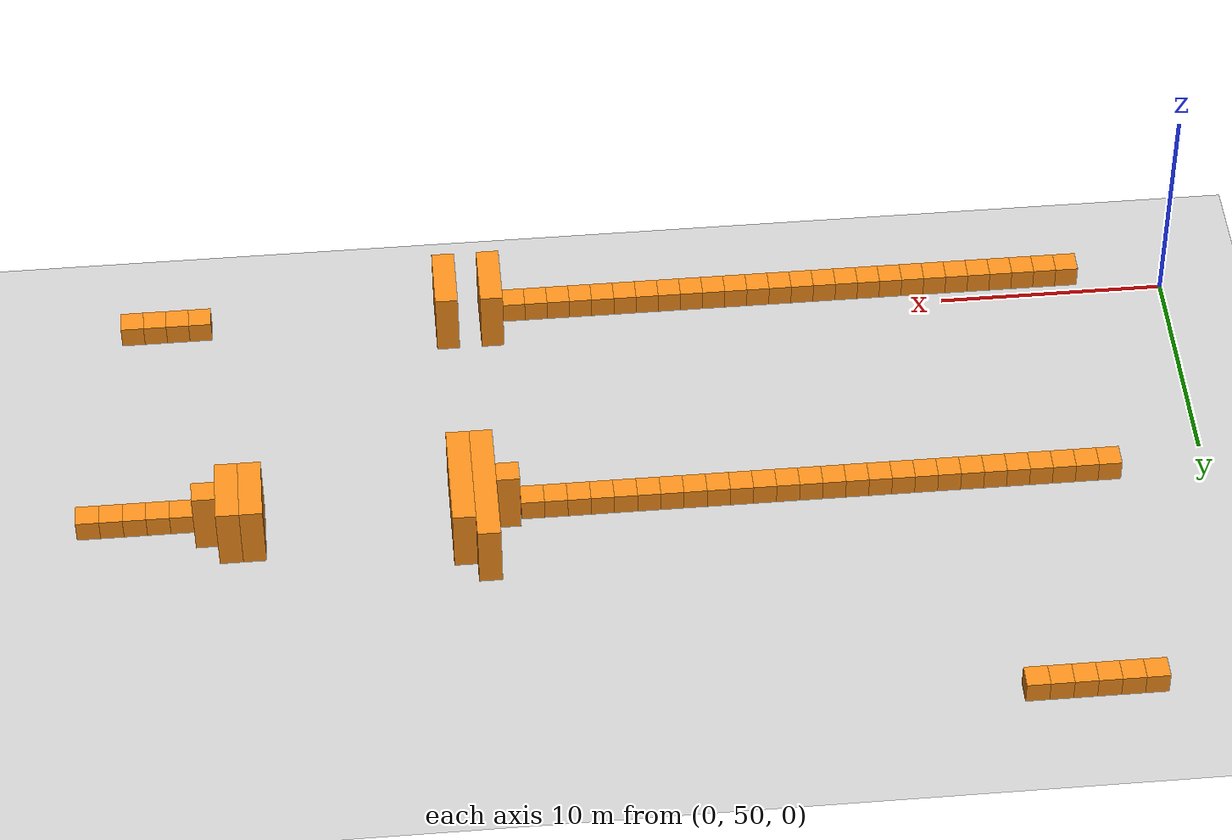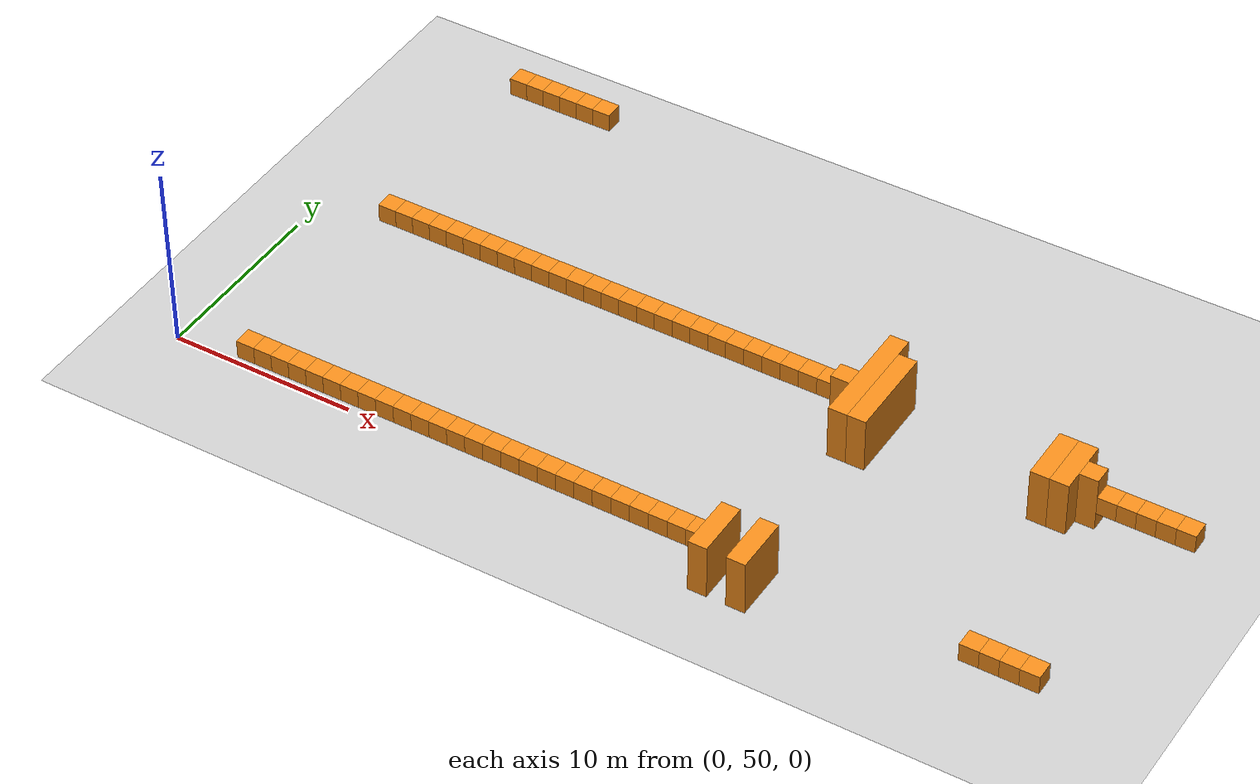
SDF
<sdf version="1.6">
 <world name="default">
  <include><uri>model://ground_plane</uri></include>
  <model name="unit_box_006">
   <pose>4.50    50.00     1.50 0 0 0</pose>
   <static>1</static>
   <link name="link">
    <inertial>
     <mass>5000</mass>
     <inertia><ixx>200</ixx><ixy>0</ixy><ixz>0</ixz><iyy>200</iyy><iyz>0</iyz><izz>200</izz></inertia>
    </inertial>
    <collision name="collision"><geometry><box><size>1 1 1</size></box></geometry></collision>
    <visual name="visual">
     <geometry><box><size>1 1 1</size></box></geometry>
     <material>
      <script><name>Gazebo/Orange</name><uri>file://media/materials/scripts/gazebo.material</uri></script>
     </material>
    </visual>
   </link>
  </model>
  <model name="unit_box_007">
   <pose>4.50    62.00     1.50 0 0 0</pose>
   <static>1</static>
   <link name="link">
    <inertial>
     <mass>5000</mass>
     <inertia><ixx>200</ixx><ixy>0</ixy><ixz>0</ixz><iyy>200</iyy><iyz>0</iyz><izz>200</izz></inertia>
    </inertial>
    <collision name="collision"><geometry><box><size>1 1 1</size></box></geometry></collision>
    <visual name="visual">
     <geometry><box><size>1 1 1</size></box></geometry>
     <material>
      <script><name>Gazebo/Orange</name><uri>file://media/materials/scripts/gazebo.material</uri></script>
     </material>
    </visual>
   </link>
  </model>
  <model name="unit_box_008">
   <pose>4.50    74.00     1.50 0 0 0</pose>
   <static>1</static>
   <link name="link">
    <inertial>
     <mass>5000</mass>
     <inertia><ixx>200</ixx><ixy>0</ixy><ixz>0</ixz><iyy>200</iyy><iyz>0</iyz><izz>200</izz></inertia>
    </inertial>
    <collision name="collision"><geometry><box><size>1 1 1</size></box></geometry></collision>
    <visual name="visual">
     <geometry><box><size>1 1 1</size></box></geometry>
     <material>
      <script><name>Gazebo/Orange</name><uri>file://media/materials/scripts/gazebo.material</uri></script>
     </material>
    </visual>
   </link>
  </model>
  <model name="unit_box_019">
   <pose>5.50    50.00     1.50 0 0 0</pose>
   <static>1</static>
   <link name="link">
    <inertial>
     <mass>5000</mass>
     <inertia><ixx>200</ixx><ixy>0</ixy><ixz>0</ixz><iyy>200</iyy><iyz>0</iyz><izz>200</izz></inertia>
    </inertial>
    <collision name="collision"><geometry><box><size>1 1 1</size></box></geometry></collision>
    <visual name="visual">
     <geometry><box><size>1 1 1</size></box></geometry>
     <material>
      <script><name>Gazebo/Orange</name><uri>file://media/materials/scripts/gazebo.material</uri></script>
     </material>
    </visual>
   </link>
  </model>
  <model name="unit_box_020">
   <pose>5.50    62.00     1.50 0 0 0</pose>
   <static>1</static>
   <link name="link">
    <inertial>
     <mass>5000</mass>
     <inertia><ixx>200</ixx><ixy>0</ixy><ixz>0</ixz><iyy>200</iyy><iyz>0</iyz><izz>200</izz></inertia>
    </inertial>
    <collision name="collision"><geometry><box><size>1 1 1</size></box></geometry></collision>
    <visual name="visual">
     <geometry><box><size>1 1 1</size></box></geometry>
     <material>
      <script><name>Gazebo/Orange</name><uri>file://media/materials/scripts/gazebo.material</uri></script>
     </material>
    </visual>
   </link>
  </model>
  <model name="unit_box_021">
   <pose>5.50    74.00     1.50 0 0 0</pose>
   <static>1</static>
   <link name="link">
    <inertial>
     <mass>5000</mass>
     <inertia><ixx>200</ixx><ixy>0</ixy><ixz>0</ixz><iyy>200</iyy><iyz>0</iyz><izz>200</izz></inertia>
    </inertial>
    <collision name="collision"><geometry><box><size>1 1 1</size></box></geometry></collision>
    <visual name="visual">
     <geometry><box><size>1 1 1</size></box></geometry>
     <material>
      <script><name>Gazebo/Orange</name><uri>file://media/materials/scripts/gazebo.material</uri></script>
     </material>
    </visual>
   </link>
  </model>
  <model name="unit_box_032">
   <pose>6.50    50.00     1.50 0 0 0</pose>
   <static>1</static>
   <link name="link">
    <inertial>
     <mass>5000</mass>
     <inertia><ixx>200</ixx><ixy>0</ixy><ixz>0</ixz><iyy>200</iyy><iyz>0</iyz><izz>200</izz></inertia>
    </inertial>
    <collision name="collision"><geometry><box><size>1 1 1</size></box></geometry></collision>
    <visual name="visual">
     <geometry><box><size>1 1 1</size></box></geometry>
     <material>
      <script><name>Gazebo/Orange</name><uri>file://media/materials/scripts/gazebo.material</uri></script>
     </material>
    </visual>
   </link>
  </model>
  <model name="unit_box_033">
   <pose>6.50    62.00     1.50 0 0 0</pose>
   <static>1</static>
   <link name="link">
    <inertial>
     <mass>5000</mass>
     <inertia><ixx>200</ixx><ixy>0</ixy><ixz>0</ixz><iyy>200</iyy><iyz>0</iyz><izz>200</izz></inertia>
    </inertial>
    <collision name="collision"><geometry><box><size>1 1 1</size></box></geometry></collision>
    <visual name="visual">
     <geometry><box><size>1 1 1</size></box></geometry>
     <material>
      <script><name>Gazebo/Orange</name><uri>file://media/materials/scripts/gazebo.material</uri></script>
     </material>
    </visual>
   </link>
  </model>
  <model name="unit_box_034">
   <pose>6.50    74.00     1.50 0 0 0</pose>
   <static>1</static>
   <link name="link">
    <inertial>
     <mass>5000</mass>
     <inertia><ixx>200</ixx><ixy>0</ixy><ixz>0</ixz><iyy>200</iyy><iyz>0</iyz><izz>200</izz></inertia>
    </inertial>
    <collision name="collision"><geometry><box><size>1 1 1</size></box></geometry></collision>
    <visual name="visual">
     <geometry><box><size>1 1 1</size></box></geometry>
     <material>
      <script><name>Gazebo/Orange</name><uri>file://media/materials/scripts/gazebo.material</uri></script>
     </material>
    </visual>
   </link>
  </model>
  <model name="unit_box_045">
   <pose>7.50    50.00     1.50 0 0 0</pose>
   <static>1</static>
   <link name="link">
    <inertial>
     <mass>5000</mass>
     <inertia><ixx>200</ixx><ixy>0</ixy><ixz>0</ixz><iyy>200</iyy><iyz>0</iyz><izz>200</izz></inertia>
    </inertial>
    <collision name="collision"><geometry><box><size>1 1 1</size></box></geometry></collision>
    <visual name="visual">
     <geometry><box><size>1 1 1</size></box></geometry>
     <material>
      <script><name>Gazebo/Orange</name><uri>file://media/materials/scripts/gazebo.material</uri></script>
     </material>
    </visual>
   </link>
  </model>
  <model name="unit_box_046">
   <pose>7.50    62.00     1.50 0 0 0</pose>
   <static>1</static>
   <link name="link">
    <inertial>
     <mass>5000</mass>
     <inertia><ixx>200</ixx><ixy>0</ixy><ixz>0</ixz><iyy>200</iyy><iyz>0</iyz><izz>200</izz></inertia>
    </inertial>
    <collision name="collision"><geometry><box><size>1 1 1</size></box></geometry></collision>
    <visual name="visual">
     <geometry><box><size>1 1 1</size></box></geometry>
     <material>
      <script><name>Gazebo/Orange</name><uri>file://media/materials/scripts/gazebo.material</uri></script>
     </material>
    </visual>
   </link>
  </model>
  <model name="unit_box_047">
   <pose>7.50    74.00     1.50 0 0 0</pose>
   <static>1</static>
   <link name="link">
    <inertial>
     <mass>5000</mass>
     <inertia><ixx>200</ixx><ixy>0</ixy><ixz>0</ixz><iyy>200</iyy><iyz>0</iyz><izz>200</izz></inertia>
    </inertial>
    <collision name="collision"><geometry><box><size>1 1 1</size></box></geometry></collision>
    <visual name="visual">
     <geometry><box><size>1 1 1</size></box></geometry>
     <material>
      <script><name>Gazebo/Orange</name><uri>file://media/materials/scripts/gazebo.material</uri></script>
     </material>
    </visual>
   </link>
  </model>
  <model name="unit_box_058">
   <pose>8.50    50.00     1.50 0 0 0</pose>
   <static>1</static>
   <link name="link">
    <inertial>
     <mass>5000</mass>
     <inertia><ixx>200</ixx><ixy>0</ixy><ixz>0</ixz><iyy>200</iyy><iyz>0</iyz><izz>200</izz></inertia>
    </inertial>
    <collision name="collision"><geometry><box><size>1 1 1</size></box></geometry></collision>
    <visual name="visual">
     <geometry><box><size>1 1 1</size></box></geometry>
     <material>
      <script><name>Gazebo/Orange</name><uri>file://media/materials/scripts/gazebo.material</uri></script>
     </material>
    </visual>
   </link>
  </model>
  <model name="unit_box_059">
   <pose>8.50    62.00     1.50 0 0 0</pose>
   <static>1</static>
   <link name="link">
    <inertial>
     <mass>5000</mass>
     <inertia><ixx>200</ixx><ixy>0</ixy><ixz>0</ixz><iyy>200</iyy><iyz>0</iyz><izz>200</izz></inertia>
    </inertial>
    <collision name="collision"><geometry><box><size>1 1 1</size></box></geometry></collision>
    <visual name="visual">
     <geometry><box><size>1 1 1</size></box></geometry>
     <material>
      <script><name>Gazebo/Orange</name><uri>file://media/materials/scripts/gazebo.material</uri></script>
     </material>
    </visual>
   </link>
  </model>
  <model name="unit_box_060">
   <pose>8.50    74.00     1.50 0 0 0</pose>
   <static>1</static>
   <link name="link">
    <inertial>
     <mass>5000</mass>
     <inertia><ixx>200</ixx><ixy>0</ixy><ixz>0</ixz><iyy>200</iyy><iyz>0</iyz><izz>200</izz></inertia>
    </inertial>
    <collision name="collision"><geometry><box><size>1 1 1</size></box></geometry></collision>
    <visual name="visual">
     <geometry><box><size>1 1 1</size></box></geometry>
     <material>
      <script><name>Gazebo/Orange</name><uri>file://media/materials/scripts/gazebo.material</uri></script>
     </material>
    </visual>
   </link>
  </model>
  <model name="unit_box_071">
   <pose>9.50    50.00     1.50 0 0 0</pose>
   <static>1</static>
   <link name="link">
    <inertial>
     <mass>5000</mass>
     <inertia><ixx>200</ixx><ixy>0</ixy><ixz>0</ixz><iyy>200</iyy><iyz>0</iyz><izz>200</izz></inertia>
    </inertial>
    <collision name="collision"><geometry><box><size>1 1 1</size></box></geometry></collision>
    <visual name="visual">
     <geometry><box><size>1 1 1</size></box></geometry>
     <material>
      <script><name>Gazebo/Orange</name><uri>file://media/materials/scripts/gazebo.material</uri></script>
     </material>
    </visual>
   </link>
  </model>
  <model name="unit_box_072">
   <pose>9.50    62.00     1.50 0 0 0</pose>
   <static>1</static>
   <link name="link">
    <inertial>
     <mass>5000</mass>
     <inertia><ixx>200</ixx><ixy>0</ixy><ixz>0</ixz><iyy>200</iyy><iyz>0</iyz><izz>200</izz></inertia>
    </inertial>
    <collision name="collision"><geometry><box><size>1 1 1</size></box></geometry></collision>
    <visual name="visual">
     <geometry><box><size>1 1 1</size></box></geometry>
     <material>
      <script><name>Gazebo/Orange</name><uri>file://media/materials/scripts/gazebo.material</uri></script>
     </material>
    </visual>
   </link>
  </model>
  <model name="unit_box_073">
   <pose>9.50    74.00     1.50 0 0 0</pose>
   <static>1</static>
   <link name="link">
    <inertial>
     <mass>5000</mass>
     <inertia><ixx>200</ixx><ixy>0</ixy><ixz>0</ixz><iyy>200</iyy><iyz>0</iyz><izz>200</izz></inertia>
    </inertial>
    <collision name="collision"><geometry><box><size>1 1 1</size></box></geometry></collision>
    <visual name="visual">
     <geometry><box><size>1 1 1</size></box></geometry>
     <material>
      <script><name>Gazebo/Orange</name><uri>file://media/materials/scripts/gazebo.material</uri></script>
     </material>
    </visual>
   </link>
  </model>
  <model name="unit_box_084">
   <pose>10.50    50.00     1.50 0 0 0</pose>
   <static>1</static>
   <link name="link">
    <inertial>
     <mass>5000</mass>
     <inertia><ixx>200</ixx><ixy>0</ixy><ixz>0</ixz><iyy>200</iyy><iyz>0</iyz><izz>200</izz></inertia>
    </inertial>
    <collision name="collision"><geometry><box><size>1 1 1</size></box></geometry></collision>
    <visual name="visual">
     <geometry><box><size>1 1 1</size></box></geometry>
     <material>
      <script><name>Gazebo/Orange</name><uri>file://media/materials/scripts/gazebo.material</uri></script>
     </material>
    </visual>
   </link>
  </model>
  <model name="unit_box_085">
   <pose>10.50    62.00     1.50 0 0 0</pose>
   <static>1</static>
   <link name="link">
    <inertial>
     <mass>5000</mass>
     <inertia><ixx>200</ixx><ixy>0</ixy><ixz>0</ixz><iyy>200</iyy><iyz>0</iyz><izz>200</izz></inertia>
    </inertial>
    <collision name="collision"><geometry><box><size>1 1 1</size></box></geometry></collision>
    <visual name="visual">
     <geometry><box><size>1 1 1</size></box></geometry>
     <material>
      <script><name>Gazebo/Orange</name><uri>file://media/materials/scripts/gazebo.material</uri></script>
     </material>
    </visual>
   </link>
  </model>
  <model name="unit_box_097">
   <pose>11.50    50.00     1.50 0 0 0</pose>
   <static>1</static>
   <link name="link">
    <inertial>
     <mass>5000</mass>
     <inertia><ixx>200</ixx><ixy>0</ixy><ixz>0</ixz><iyy>200</iyy><iyz>0</iyz><izz>200</izz></inertia>
    </inertial>
    <collision name="collision"><geometry><box><size>1 1 1</size></box></geometry></collision>
    <visual name="visual">
     <geometry><box><size>1 1 1</size></box></geometry>
     <material>
      <script><name>Gazebo/Orange</name><uri>file://media/materials/scripts/gazebo.material</uri></script>
     </material>
    </visual>
   </link>
  </model>
  <model name="unit_box_098">
   <pose>11.50    62.00     1.50 0 0 0</pose>
   <static>1</static>
   <link name="link">
    <inertial>
     <mass>5000</mass>
     <inertia><ixx>200</ixx><ixy>0</ixy><ixz>0</ixz><iyy>200</iyy><iyz>0</iyz><izz>200</izz></inertia>
    </inertial>
    <collision name="collision"><geometry><box><size>1 1 1</size></box></geometry></collision>
    <visual name="visual">
     <geometry><box><size>1 1 1</size></box></geometry>
     <material>
      <script><name>Gazebo/Orange</name><uri>file://media/materials/scripts/gazebo.material</uri></script>
     </material>
    </visual>
   </link>
  </model>
  <model name="unit_box_110">
   <pose>12.50    50.00     1.50 0 0 0</pose>
   <static>1</static>
   <link name="link">
    <inertial>
     <mass>5000</mass>
     <inertia><ixx>200</ixx><ixy>0</ixy><ixz>0</ixz><iyy>200</iyy><iyz>0</iyz><izz>200</izz></inertia>
    </inertial>
    <collision name="collision"><geometry><box><size>1 1 1</size></box></geometry></collision>
    <visual name="visual">
     <geometry><box><size>1 1 1</size></box></geometry>
     <material>
      <script><name>Gazebo/Orange</name><uri>file://media/materials/scripts/gazebo.material</uri></script>
     </material>
    </visual>
   </link>
  </model>
  <model name="unit_box_111">
   <pose>12.50    62.00     1.50 0 0 0</pose>
   <static>1</static>
   <link name="link">
    <inertial>
     <mass>5000</mass>
     <inertia><ixx>200</ixx><ixy>0</ixy><ixz>0</ixz><iyy>200</iyy><iyz>0</iyz><izz>200</izz></inertia>
    </inertial>
    <collision name="collision"><geometry><box><size>1 1 1</size></box></geometry></collision>
    <visual name="visual">
     <geometry><box><size>1 1 1</size></box></geometry>
     <material>
      <script><name>Gazebo/Orange</name><uri>file://media/materials/scripts/gazebo.material</uri></script>
     </material>
    </visual>
   </link>
  </model>
  <model name="unit_box_123">
   <pose>13.50    50.00     1.50 0 0 0</pose>
   <static>1</static>
   <link name="link">
    <inertial>
     <mass>5000</mass>
     <inertia><ixx>200</ixx><ixy>0</ixy><ixz>0</ixz><iyy>200</iyy><iyz>0</iyz><izz>200</izz></inertia>
    </inertial>
    <collision name="collision"><geometry><box><size>1 1 1</size></box></geometry></collision>
    <visual name="visual">
     <geometry><box><size>1 1 1</size></box></geometry>
     <material>
      <script><name>Gazebo/Orange</name><uri>file://media/materials/scripts/gazebo.material</uri></script>
     </material>
    </visual>
   </link>
  </model>
  <model name="unit_box_124">
   <pose>13.50    62.00     1.50 0 0 0</pose>
   <static>1</static>
   <link name="link">
    <inertial>
     <mass>5000</mass>
     <inertia><ixx>200</ixx><ixy>0</ixy><ixz>0</ixz><iyy>200</iyy><iyz>0</iyz><izz>200</izz></inertia>
    </inertial>
    <collision name="collision"><geometry><box><size>1 1 1</size></box></geometry></collision>
    <visual name="visual">
     <geometry><box><size>1 1 1</size></box></geometry>
     <material>
      <script><name>Gazebo/Orange</name><uri>file://media/materials/scripts/gazebo.material</uri></script>
     </material>
    </visual>
   </link>
  </model>
  <model name="unit_box_136">
   <pose>14.50    50.00     1.50 0 0 0</pose>
   <static>1</static>
   <link name="link">
    <inertial>
     <mass>5000</mass>
     <inertia><ixx>200</ixx><ixy>0</ixy><ixz>0</ixz><iyy>200</iyy><iyz>0</iyz><izz>200</izz></inertia>
    </inertial>
    <collision name="collision"><geometry><box><size>1 1 1</size></box></geometry></collision>
    <visual name="visual">
     <geometry><box><size>1 1 1</size></box></geometry>
     <material>
      <script><name>Gazebo/Orange</name><uri>file://media/materials/scripts/gazebo.material</uri></script>
     </material>
    </visual>
   </link>
  </model>
  <model name="unit_box_137">
   <pose>14.50    62.00     1.50 0 0 0</pose>
   <static>1</static>
   <link name="link">
    <inertial>
     <mass>5000</mass>
     <inertia><ixx>200</ixx><ixy>0</ixy><ixz>0</ixz><iyy>200</iyy><iyz>0</iyz><izz>200</izz></inertia>
    </inertial>
    <collision name="collision"><geometry><box><size>1 1 1</size></box></geometry></collision>
    <visual name="visual">
     <geometry><box><size>1 1 1</size></box></geometry>
     <material>
      <script><name>Gazebo/Orange</name><uri>file://media/materials/scripts/gazebo.material</uri></script>
     </material>
    </visual>
   </link>
  </model>
  <model name="unit_box_149">
   <pose>15.50    50.00     1.50 0 0 0</pose>
   <static>1</static>
   <link name="link">
    <inertial>
     <mass>5000</mass>
     <inertia><ixx>200</ixx><ixy>0</ixy><ixz>0</ixz><iyy>200</iyy><iyz>0</iyz><izz>200</izz></inertia>
    </inertial>
    <collision name="collision"><geometry><box><size>1 1 1</size></box></geometry></collision>
    <visual name="visual">
     <geometry><box><size>1 1 1</size></box></geometry>
     <material>
      <script><name>Gazebo/Orange</name><uri>file://media/materials/scripts/gazebo.material</uri></script>
     </material>
    </visual>
   </link>
  </model>
  <model name="unit_box_150">
   <pose>15.50    62.00     1.50 0 0 0</pose>
   <static>1</static>
   <link name="link">
    <inertial>
     <mass>5000</mass>
     <inertia><ixx>200</ixx><ixy>0</ixy><ixz>0</ixz><iyy>200</iyy><iyz>0</iyz><izz>200</izz></inertia>
    </inertial>
    <collision name="collision"><geometry><box><size>1 1 1</size></box></geometry></collision>
    <visual name="visual">
     <geometry><box><size>1 1 1</size></box></geometry>
     <material>
      <script><name>Gazebo/Orange</name><uri>file://media/materials/scripts/gazebo.material</uri></script>
     </material>
    </visual>
   </link>
  </model>
  <model name="unit_box_162">
   <pose>16.50    50.00     1.50 0 0 0</pose>
   <static>1</static>
   <link name="link">
    <inertial>
     <mass>5000</mass>
     <inertia><ixx>200</ixx><ixy>0</ixy><ixz>0</ixz><iyy>200</iyy><iyz>0</iyz><izz>200</izz></inertia>
    </inertial>
    <collision name="collision"><geometry><box><size>1 1 1</size></box></geometry></collision>
    <visual name="visual">
     <geometry><box><size>1 1 1</size></box></geometry>
     <material>
      <script><name>Gazebo/Orange</name><uri>file://media/materials/scripts/gazebo.material</uri></script>
     </material>
    </visual>
   </link>
  </model>
  <model name="unit_box_163">
   <pose>16.50    62.00     1.50 0 0 0</pose>
   <static>1</static>
   <link name="link">
    <inertial>
     <mass>5000</mass>
     <inertia><ixx>200</ixx><ixy>0</ixy><ixz>0</ixz><iyy>200</iyy><iyz>0</iyz><izz>200</izz></inertia>
    </inertial>
    <collision name="collision"><geometry><box><size>1 1 1</size></box></geometry></collision>
    <visual name="visual">
     <geometry><box><size>1 1 1</size></box></geometry>
     <material>
      <script><name>Gazebo/Orange</name><uri>file://media/materials/scripts/gazebo.material</uri></script>
     </material>
    </visual>
   </link>
  </model>
  <model name="unit_box_175">
   <pose>17.50    50.00     1.50 0 0 0</pose>
   <static>1</static>
   <link name="link">
    <inertial>
     <mass>5000</mass>
     <inertia><ixx>200</ixx><ixy>0</ixy><ixz>0</ixz><iyy>200</iyy><iyz>0</iyz><izz>200</izz></inertia>
    </inertial>
    <collision name="collision"><geometry><box><size>1 1 1</size></box></geometry></collision>
    <visual name="visual">
     <geometry><box><size>1 1 1</size></box></geometry>
     <material>
      <script><name>Gazebo/Orange</name><uri>file://media/materials/scripts/gazebo.material</uri></script>
     </material>
    </visual>
   </link>
  </model>
  <model name="unit_box_176">
   <pose>17.50    62.00     1.50 0 0 0</pose>
   <static>1</static>
   <link name="link">
    <inertial>
     <mass>5000</mass>
     <inertia><ixx>200</ixx><ixy>0</ixy><ixz>0</ixz><iyy>200</iyy><iyz>0</iyz><izz>200</izz></inertia>
    </inertial>
    <collision name="collision"><geometry><box><size>1 1 1</size></box></geometry></collision>
    <visual name="visual">
     <geometry><box><size>1 1 1</size></box></geometry>
     <material>
      <script><name>Gazebo/Orange</name><uri>file://media/materials/scripts/gazebo.material</uri></script>
     </material>
    </visual>
   </link>
  </model>
  <model name="unit_box_188">
   <pose>18.50    50.00     1.50 0 0 0</pose>
   <static>1</static>
   <link name="link">
    <inertial>
     <mass>5000</mass>
     <inertia><ixx>200</ixx><ixy>0</ixy><ixz>0</ixz><iyy>200</iyy><iyz>0</iyz><izz>200</izz></inertia>
    </inertial>
    <collision name="collision"><geometry><box><size>1 1 1</size></box></geometry></collision>
    <visual name="visual">
     <geometry><box><size>1 1 1</size></box></geometry>
     <material>
      <script><name>Gazebo/Orange</name><uri>file://media/materials/scripts/gazebo.material</uri></script>
     </material>
    </visual>
   </link>
  </model>
  <model name="unit_box_189">
   <pose>18.50    62.00     1.50 0 0 0</pose>
   <static>1</static>
   <link name="link">
    <inertial>
     <mass>5000</mass>
     <inertia><ixx>200</ixx><ixy>0</ixy><ixz>0</ixz><iyy>200</iyy><iyz>0</iyz><izz>200</izz></inertia>
    </inertial>
    <collision name="collision"><geometry><box><size>1 1 1</size></box></geometry></collision>
    <visual name="visual">
     <geometry><box><size>1 1 1</size></box></geometry>
     <material>
      <script><name>Gazebo/Orange</name><uri>file://media/materials/scripts/gazebo.material</uri></script>
     </material>
    </visual>
   </link>
  </model>
  <model name="unit_box_201">
   <pose>19.50    50.00     1.50 0 0 0</pose>
   <static>1</static>
   <link name="link">
    <inertial>
     <mass>5000</mass>
     <inertia><ixx>200</ixx><ixy>0</ixy><ixz>0</ixz><iyy>200</iyy><iyz>0</iyz><izz>200</izz></inertia>
    </inertial>
    <collision name="collision"><geometry><box><size>1 1 1</size></box></geometry></collision>
    <visual name="visual">
     <geometry><box><size>1 1 1</size></box></geometry>
     <material>
      <script><name>Gazebo/Orange</name><uri>file://media/materials/scripts/gazebo.material</uri></script>
     </material>
    </visual>
   </link>
  </model>
  <model name="unit_box_202">
   <pose>19.50    62.00     1.50 0 0 0</pose>
   <static>1</static>
   <link name="link">
    <inertial>
     <mass>5000</mass>
     <inertia><ixx>200</ixx><ixy>0</ixy><ixz>0</ixz><iyy>200</iyy><iyz>0</iyz><izz>200</izz></inertia>
    </inertial>
    <collision name="collision"><geometry><box><size>1 1 1</size></box></geometry></collision>
    <visual name="visual">
     <geometry><box><size>1 1 1</size></box></geometry>
     <material>
      <script><name>Gazebo/Orange</name><uri>file://media/materials/scripts/gazebo.material</uri></script>
     </material>
    </visual>
   </link>
  </model>
  <model name="unit_box_214">
   <pose>20.50    50.00     1.50 0 0 0</pose>
   <static>1</static>
   <link name="link">
    <inertial>
     <mass>5000</mass>
     <inertia><ixx>200</ixx><ixy>0</ixy><ixz>0</ixz><iyy>200</iyy><iyz>0</iyz><izz>200</izz></inertia>
    </inertial>
    <collision name="collision"><geometry><box><size>1 1 1</size></box></geometry></collision>
    <visual name="visual">
     <geometry><box><size>1 1 1</size></box></geometry>
     <material>
      <script><name>Gazebo/Orange</name><uri>file://media/materials/scripts/gazebo.material</uri></script>
     </material>
    </visual>
   </link>
  </model>
  <model name="unit_box_215">
   <pose>20.50    62.00     1.50 0 0 0</pose>
   <static>1</static>
   <link name="link">
    <inertial>
     <mass>5000</mass>
     <inertia><ixx>200</ixx><ixy>0</ixy><ixz>0</ixz><iyy>200</iyy><iyz>0</iyz><izz>200</izz></inertia>
    </inertial>
    <collision name="collision"><geometry><box><size>1 1 1</size></box></geometry></collision>
    <visual name="visual">
     <geometry><box><size>1 1 1</size></box></geometry>
     <material>
      <script><name>Gazebo/Orange</name><uri>file://media/materials/scripts/gazebo.material</uri></script>
     </material>
    </visual>
   </link>
  </model>
  <model name="unit_box_227">
   <pose>21.50    50.00     1.50 0 0 0</pose>
   <static>1</static>
   <link name="link">
    <inertial>
     <mass>5000</mass>
     <inertia><ixx>200</ixx><ixy>0</ixy><ixz>0</ixz><iyy>200</iyy><iyz>0</iyz><izz>200</izz></inertia>
    </inertial>
    <collision name="collision"><geometry><box><size>1 1 1</size></box></geometry></collision>
    <visual name="visual">
     <geometry><box><size>1 1 1</size></box></geometry>
     <material>
      <script><name>Gazebo/Orange</name><uri>file://media/materials/scripts/gazebo.material</uri></script>
     </material>
    </visual>
   </link>
  </model>
  <model name="unit_box_228">
   <pose>21.50    62.00     1.50 0 0 0</pose>
   <static>1</static>
   <link name="link">
    <inertial>
     <mass>5000</mass>
     <inertia><ixx>200</ixx><ixy>0</ixy><ixz>0</ixz><iyy>200</iyy><iyz>0</iyz><izz>200</izz></inertia>
    </inertial>
    <collision name="collision"><geometry><box><size>1 1 1</size></box></geometry></collision>
    <visual name="visual">
     <geometry><box><size>1 1 1</size></box></geometry>
     <material>
      <script><name>Gazebo/Orange</name><uri>file://media/materials/scripts/gazebo.material</uri></script>
     </material>
    </visual>
   </link>
  </model>
  <model name="unit_box_240">
   <pose>22.50    50.00     1.50 0 0 0</pose>
   <static>1</static>
   <link name="link">
    <inertial>
     <mass>5000</mass>
     <inertia><ixx>200</ixx><ixy>0</ixy><ixz>0</ixz><iyy>200</iyy><iyz>0</iyz><izz>200</izz></inertia>
    </inertial>
    <collision name="collision"><geometry><box><size>1 1 1</size></box></geometry></collision>
    <visual name="visual">
     <geometry><box><size>1 1 1</size></box></geometry>
     <material>
      <script><name>Gazebo/Orange</name><uri>file://media/materials/scripts/gazebo.material</uri></script>
     </material>
    </visual>
   </link>
  </model>
  <model name="unit_box_241">
   <pose>22.50    62.00     1.50 0 0 0</pose>
   <static>1</static>
   <link name="link">
    <inertial>
     <mass>5000</mass>
     <inertia><ixx>200</ixx><ixy>0</ixy><ixz>0</ixz><iyy>200</iyy><iyz>0</iyz><izz>200</izz></inertia>
    </inertial>
    <collision name="collision"><geometry><box><size>1 1 1</size></box></geometry></collision>
    <visual name="visual">
     <geometry><box><size>1 1 1</size></box></geometry>
     <material>
      <script><name>Gazebo/Orange</name><uri>file://media/materials/scripts/gazebo.material</uri></script>
     </material>
    </visual>
   </link>
  </model>
  <model name="unit_box_253">
   <pose>23.50    50.00     1.50 0 0 0</pose>
   <static>1</static>
   <link name="link">
    <inertial>
     <mass>5000</mass>
     <inertia><ixx>200</ixx><ixy>0</ixy><ixz>0</ixz><iyy>200</iyy><iyz>0</iyz><izz>200</izz></inertia>
    </inertial>
    <collision name="collision"><geometry><box><size>1 1 1</size></box></geometry></collision>
    <visual name="visual">
     <geometry><box><size>1 1 1</size></box></geometry>
     <material>
      <script><name>Gazebo/Orange</name><uri>file://media/materials/scripts/gazebo.material</uri></script>
     </material>
    </visual>
   </link>
  </model>
  <model name="unit_box_254">
   <pose>23.50    62.00     1.50 0 0 0</pose>
   <static>1</static>
   <link name="link">
    <inertial>
     <mass>5000</mass>
     <inertia><ixx>200</ixx><ixy>0</ixy><ixz>0</ixz><iyy>200</iyy><iyz>0</iyz><izz>200</izz></inertia>
    </inertial>
    <collision name="collision"><geometry><box><size>1 1 1</size></box></geometry></collision>
    <visual name="visual">
     <geometry><box><size>1 1 1</size></box></geometry>
     <material>
      <script><name>Gazebo/Orange</name><uri>file://media/materials/scripts/gazebo.material</uri></script>
     </material>
    </visual>
   </link>
  </model>
  <model name="unit_box_266">
   <pose>24.50    50.00     1.50 0 0 0</pose>
   <static>1</static>
   <link name="link">
    <inertial>
     <mass>5000</mass>
     <inertia><ixx>200</ixx><ixy>0</ixy><ixz>0</ixz><iyy>200</iyy><iyz>0</iyz><izz>200</izz></inertia>
    </inertial>
    <collision name="collision"><geometry><box><size>1 1 1</size></box></geometry></collision>
    <visual name="visual">
     <geometry><box><size>1 1 1</size></box></geometry>
     <material>
      <script><name>Gazebo/Orange</name><uri>file://media/materials/scripts/gazebo.material</uri></script>
     </material>
    </visual>
   </link>
  </model>
  <model name="unit_box_267">
   <pose>24.50    62.00     1.50 0 0 0</pose>
   <static>1</static>
   <link name="link">
    <inertial>
     <mass>5000</mass>
     <inertia><ixx>200</ixx><ixy>0</ixy><ixz>0</ixz><iyy>200</iyy><iyz>0</iyz><izz>200</izz></inertia>
    </inertial>
    <collision name="collision"><geometry><box><size>1 1 1</size></box></geometry></collision>
    <visual name="visual">
     <geometry><box><size>1 1 1</size></box></geometry>
     <material>
      <script><name>Gazebo/Orange</name><uri>file://media/materials/scripts/gazebo.material</uri></script>
     </material>
    </visual>
   </link>
  </model>
  <model name="unit_box_279">
   <pose>25.50    50.00     1.50 0 0 0</pose>
   <static>1</static>
   <link name="link">
    <inertial>
     <mass>5000</mass>
     <inertia><ixx>200</ixx><ixy>0</ixy><ixz>0</ixz><iyy>200</iyy><iyz>0</iyz><izz>200</izz></inertia>
    </inertial>
    <collision name="collision"><geometry><box><size>1 1 1</size></box></geometry></collision>
    <visual name="visual">
     <geometry><box><size>1 1 1</size></box></geometry>
     <material>
      <script><name>Gazebo/Orange</name><uri>file://media/materials/scripts/gazebo.material</uri></script>
     </material>
    </visual>
   </link>
  </model>
  <model name="unit_box_280">
   <pose>25.50    62.00     1.50 0 0 0</pose>
   <static>1</static>
   <link name="link">
    <inertial>
     <mass>5000</mass>
     <inertia><ixx>200</ixx><ixy>0</ixy><ixz>0</ixz><iyy>200</iyy><iyz>0</iyz><izz>200</izz></inertia>
    </inertial>
    <collision name="collision"><geometry><box><size>1 1 1</size></box></geometry></collision>
    <visual name="visual">
     <geometry><box><size>1 1 1</size></box></geometry>
     <material>
      <script><name>Gazebo/Orange</name><uri>file://media/materials/scripts/gazebo.material</uri></script>
     </material>
    </visual>
   </link>
  </model>
  <model name="unit_box_292">
   <pose>26.50    50.00     1.50 0 0 0</pose>
   <static>1</static>
   <link name="link">
    <inertial>
     <mass>5000</mass>
     <inertia><ixx>200</ixx><ixy>0</ixy><ixz>0</ixz><iyy>200</iyy><iyz>0</iyz><izz>200</izz></inertia>
    </inertial>
    <collision name="collision"><geometry><box><size>1 1 1</size></box></geometry></collision>
    <visual name="visual">
     <geometry><box><size>1 1 1</size></box></geometry>
     <material>
      <script><name>Gazebo/Orange</name><uri>file://media/materials/scripts/gazebo.material</uri></script>
     </material>
    </visual>
   </link>
  </model>
  <model name="unit_box_293">
   <pose>26.50    62.00     1.50 0 0 0</pose>
   <static>1</static>
   <link name="link">
    <inertial>
     <mass>5000</mass>
     <inertia><ixx>200</ixx><ixy>0</ixy><ixz>0</ixz><iyy>200</iyy><iyz>0</iyz><izz>200</izz></inertia>
    </inertial>
    <collision name="collision"><geometry><box><size>1 1 1</size></box></geometry></collision>
    <visual name="visual">
     <geometry><box><size>1 1 1</size></box></geometry>
     <material>
      <script><name>Gazebo/Orange</name><uri>file://media/materials/scripts/gazebo.material</uri></script>
     </material>
    </visual>
   </link>
  </model>
  <model name="unit_box_305">
   <pose>27.50    50.00     1.50 0 0 0</pose>
   <static>1</static>
   <link name="link">
    <inertial>
     <mass>5000</mass>
     <inertia><ixx>200</ixx><ixy>0</ixy><ixz>0</ixz><iyy>200</iyy><iyz>0</iyz><izz>200</izz></inertia>
    </inertial>
    <collision name="collision"><geometry><box><size>1 1 1</size></box></geometry></collision>
    <visual name="visual">
     <geometry><box><size>1 1 1</size></box></geometry>
     <material>
      <script><name>Gazebo/Orange</name><uri>file://media/materials/scripts/gazebo.material</uri></script>
     </material>
    </visual>
   </link>
  </model>
  <model name="unit_box_306">
   <pose>27.50    62.00     1.50 0 0 0</pose>
   <static>1</static>
   <link name="link">
    <inertial>
     <mass>5000</mass>
     <inertia><ixx>200</ixx><ixy>0</ixy><ixz>0</ixz><iyy>200</iyy><iyz>0</iyz><izz>200</izz></inertia>
    </inertial>
    <collision name="collision"><geometry><box><size>1 1 1</size></box></geometry></collision>
    <visual name="visual">
     <geometry><box><size>1 1 1</size></box></geometry>
     <material>
      <script><name>Gazebo/Orange</name><uri>file://media/materials/scripts/gazebo.material</uri></script>
     </material>
    </visual>
   </link>
  </model>
  <model name="unit_box_318">
   <pose>28.50    50.00     1.50 0 0 0</pose>
   <static>1</static>
   <link name="link">
    <inertial>
     <mass>5000</mass>
     <inertia><ixx>200</ixx><ixy>0</ixy><ixz>0</ixz><iyy>200</iyy><iyz>0</iyz><izz>200</izz></inertia>
    </inertial>
    <collision name="collision"><geometry><box><size>1 1 1</size></box></geometry></collision>
    <visual name="visual">
     <geometry><box><size>1 1 1</size></box></geometry>
     <material>
      <script><name>Gazebo/Orange</name><uri>file://media/materials/scripts/gazebo.material</uri></script>
     </material>
    </visual>
   </link>
  </model>
  <model name="unit_box_319">
   <pose>28.50    62.00     1.50 0 0 0</pose>
   <static>1</static>
   <link name="link">
    <inertial>
     <mass>5000</mass>
     <inertia><ixx>200</ixx><ixy>0</ixy><ixz>0</ixz><iyy>200</iyy><iyz>0</iyz><izz>200</izz></inertia>
    </inertial>
    <collision name="collision"><geometry><box><size>1 1 1</size></box></geometry></collision>
    <visual name="visual">
     <geometry><box><size>1 1 1</size></box></geometry>
     <material>
      <script><name>Gazebo/Orange</name><uri>file://media/materials/scripts/gazebo.material</uri></script>
     </material>
    </visual>
   </link>
  </model>
  <model name="unit_box_331">
   <pose>29.50    50.00     1.50 0 0 0</pose>
   <static>1</static>
   <link name="link">
    <inertial>
     <mass>5000</mass>
     <inertia><ixx>200</ixx><ixy>0</ixy><ixz>0</ixz><iyy>200</iyy><iyz>0</iyz><izz>200</izz></inertia>
    </inertial>
    <collision name="collision"><geometry><box><size>1 1 1</size></box></geometry></collision>
    <visual name="visual">
     <geometry><box><size>1 1 1</size></box></geometry>
     <material>
      <script><name>Gazebo/Orange</name><uri>file://media/materials/scripts/gazebo.material</uri></script>
     </material>
    </visual>
   </link>
  </model>
  <model name="unit_box_332">
   <pose>29.50    62.00     1.50 0 0 0</pose>
   <static>1</static>
   <link name="link">
    <inertial>
     <mass>5000</mass>
     <inertia><ixx>200</ixx><ixy>0</ixy><ixz>0</ixz><iyy>200</iyy><iyz>0</iyz><izz>200</izz></inertia>
    </inertial>
    <collision name="collision"><geometry><box><size>1 1 1</size></box></geometry></collision>
    <visual name="visual">
     <geometry><box><size>1 1 1</size></box></geometry>
     <material>
      <script><name>Gazebo/Orange</name><uri>file://media/materials/scripts/gazebo.material</uri></script>
     </material>
    </visual>
   </link>
  </model>
  <model name="unit_box_344">
   <pose>30.50    49.50     1.50 0 0 0</pose>
   <static>1</static>
   <link name="link">
    <inertial>
     <mass>5000</mass>
     <inertia><ixx>200</ixx><ixy>0</ixy><ixz>0</ixz><iyy>200</iyy><iyz>0</iyz><izz>200</izz></inertia>
    </inertial>
    <collision name="collision"><geometry><box><size>1 3 3</size></box></geometry></collision>
    <visual name="visual">
     <geometry><box><size>1 3 3</size></box></geometry>
     <material>
      <script><name>Gazebo/Orange</name><uri>file://media/materials/scripts/gazebo.material</uri></script>
     </material>
    </visual>
   </link>
  </model>
  <model name="unit_box_345">
   <pose>30.50    61.50     1.50 0 0 0</pose>
   <static>1</static>
   <link name="link">
    <inertial>
     <mass>5000</mass>
     <inertia><ixx>200</ixx><ixy>0</ixy><ixz>0</ixz><iyy>200</iyy><iyz>0</iyz><izz>200</izz></inertia>
    </inertial>
    <collision name="collision"><geometry><box><size>1 1 3</size></box></geometry></collision>
    <visual name="visual">
     <geometry><box><size>1 1 3</size></box></geometry>
     <material>
      <script><name>Gazebo/Orange</name><uri>file://media/materials/scripts/gazebo.material</uri></script>
     </material>
    </visual>
   </link>
  </model>
  <model name="unit_box_358">
   <pose>31.50    62.00     1.50 0 0 0</pose>
   <static>1</static>
   <link name="link">
    <inertial>
     <mass>5000</mass>
     <inertia><ixx>200</ixx><ixy>0</ixy><ixz>0</ixz><iyy>200</iyy><iyz>0</iyz><izz>200</izz></inertia>
    </inertial>
    <collision name="collision"><geometry><box><size>1 6 3</size></box></geometry></collision>
    <visual name="visual">
     <geometry><box><size>1 6 3</size></box></geometry>
     <material>
      <script><name>Gazebo/Orange</name><uri>file://media/materials/scripts/gazebo.material</uri></script>
     </material>
    </visual>
   </link>
  </model>
  <model name="unit_box_372">
   <pose>32.50    49.50     1.50 0 0 0</pose>
   <static>1</static>
   <link name="link">
    <inertial>
     <mass>5000</mass>
     <inertia><ixx>200</ixx><ixy>0</ixy><ixz>0</ixz><iyy>200</iyy><iyz>0</iyz><izz>200</izz></inertia>
    </inertial>
    <collision name="collision"><geometry><box><size>1 3 3</size></box></geometry></collision>
    <visual name="visual">
     <geometry><box><size>1 3 3</size></box></geometry>
     <material>
      <script><name>Gazebo/Orange</name><uri>file://media/materials/scripts/gazebo.material</uri></script>
     </material>
    </visual>
   </link>
  </model>
  <model name="unit_box_373">
   <pose>32.50    61.50     1.50 0 0 0</pose>
   <static>1</static>
   <link name="link">
    <inertial>
     <mass>5000</mass>
     <inertia><ixx>200</ixx><ixy>0</ixy><ixz>0</ixz><iyy>200</iyy><iyz>0</iyz><izz>200</izz></inertia>
    </inertial>
    <collision name="collision"><geometry><box><size>1 5 3</size></box></geometry></collision>
    <visual name="visual">
     <geometry><box><size>1 5 3</size></box></geometry>
     <material>
      <script><name>Gazebo/Orange</name><uri>file://media/materials/scripts/gazebo.material</uri></script>
     </material>
    </visual>
   </link>
  </model>
  <model name="unit_box_430">
   <pose>41.50    61.50     1.50 0 0 0</pose>
   <static>1</static>
   <link name="link">
    <inertial>
     <mass>5000</mass>
     <inertia><ixx>200</ixx><ixy>0</ixy><ixz>0</ixz><iyy>200</iyy><iyz>0</iyz><izz>200</izz></inertia>
    </inertial>
    <collision name="collision"><geometry><box><size>1 3 3</size></box></geometry></collision>
    <visual name="visual">
     <geometry><box><size>1 3 3</size></box></geometry>
     <material>
      <script><name>Gazebo/Orange</name><uri>file://media/materials/scripts/gazebo.material</uri></script>
     </material>
    </visual>
   </link>
  </model>
  <model name="unit_box_439">
   <pose>42.50    61.50     1.50 0 0 0</pose>
   <static>1</static>
   <link name="link">
    <inertial>
     <mass>5000</mass>
     <inertia><ixx>200</ixx><ixy>0</ixy><ixz>0</ixz><iyy>200</iyy><iyz>0</iyz><izz>200</izz></inertia>
    </inertial>
    <collision name="collision"><geometry><box><size>1 3 3</size></box></geometry></collision>
    <visual name="visual">
     <geometry><box><size>1 3 3</size></box></geometry>
     <material>
      <script><name>Gazebo/Orange</name><uri>file://media/materials/scripts/gazebo.material</uri></script>
     </material>
    </visual>
   </link>
  </model>
  <model name="unit_box_452">
   <pose>43.50    50.00     1.50 0 0 0</pose>
   <static>1</static>
   <link name="link">
    <inertial>
     <mass>5000</mass>
     <inertia><ixx>200</ixx><ixy>0</ixy><ixz>0</ixz><iyy>200</iyy><iyz>0</iyz><izz>200</izz></inertia>
    </inertial>
    <collision name="collision"><geometry><box><size>1 1 1</size></box></geometry></collision>
    <visual name="visual">
     <geometry><box><size>1 1 1</size></box></geometry>
     <material>
      <script><name>Gazebo/Orange</name><uri>file://media/materials/scripts/gazebo.material</uri></script>
     </material>
    </visual>
   </link>
  </model>
  <model name="unit_box_453">
   <pose>43.50    61.50     1.50 0 0 0</pose>
   <static>1</static>
   <link name="link">
    <inertial>
     <mass>5000</mass>
     <inertia><ixx>200</ixx><ixy>0</ixy><ixz>0</ixz><iyy>200</iyy><iyz>0</iyz><izz>200</izz></inertia>
    </inertial>
    <collision name="collision"><geometry><box><size>1 1 3</size></box></geometry></collision>
    <visual name="visual">
     <geometry><box><size>1 1 3</size></box></geometry>
     <material>
      <script><name>Gazebo/Orange</name><uri>file://media/materials/scripts/gazebo.material</uri></script>
     </material>
    </visual>
   </link>
  </model>
  <model name="unit_box_467">
   <pose>44.50    50.00     1.50 0 0 0</pose>
   <static>1</static>
   <link name="link">
    <inertial>
     <mass>5000</mass>
     <inertia><ixx>200</ixx><ixy>0</ixy><ixz>0</ixz><iyy>200</iyy><iyz>0</iyz><izz>200</izz></inertia>
    </inertial>
    <collision name="collision"><geometry><box><size>1 1 1</size></box></geometry></collision>
    <visual name="visual">
     <geometry><box><size>1 1 1</size></box></geometry>
     <material>
      <script><name>Gazebo/Orange</name><uri>file://media/materials/scripts/gazebo.material</uri></script>
     </material>
    </visual>
   </link>
  </model>
  <model name="unit_box_468">
   <pose>44.50    61.50     1.50 0 0 0</pose>
   <static>1</static>
   <link name="link">
    <inertial>
     <mass>5000</mass>
     <inertia><ixx>200</ixx><ixy>0</ixy><ixz>0</ixz><iyy>200</iyy><iyz>0</iyz><izz>200</izz></inertia>
    </inertial>
    <collision name="collision"><geometry><box><size>1 1 1</size></box></geometry></collision>
    <visual name="visual">
     <geometry><box><size>1 1 1</size></box></geometry>
     <material>
      <script><name>Gazebo/Orange</name><uri>file://media/materials/scripts/gazebo.material</uri></script>
     </material>
    </visual>
   </link>
  </model>
  <model name="unit_box_482">
   <pose>45.50    50.00     1.50 0 0 0</pose>
   <static>1</static>
   <link name="link">
    <inertial>
     <mass>5000</mass>
     <inertia><ixx>200</ixx><ixy>0</ixy><ixz>0</ixz><iyy>200</iyy><iyz>0</iyz><izz>200</izz></inertia>
    </inertial>
    <collision name="collision"><geometry><box><size>1 1 1</size></box></geometry></collision>
    <visual name="visual">
     <geometry><box><size>1 1 1</size></box></geometry>
     <material>
      <script><name>Gazebo/Orange</name><uri>file://media/materials/scripts/gazebo.material</uri></script>
     </material>
    </visual>
   </link>
  </model>
  <model name="unit_box_483">
   <pose>45.50    61.50     1.50 0 0 0</pose>
   <static>1</static>
   <link name="link">
    <inertial>
     <mass>5000</mass>
     <inertia><ixx>200</ixx><ixy>0</ixy><ixz>0</ixz><iyy>200</iyy><iyz>0</iyz><izz>200</izz></inertia>
    </inertial>
    <collision name="collision"><geometry><box><size>1 1 1</size></box></geometry></collision>
    <visual name="visual">
     <geometry><box><size>1 1 1</size></box></geometry>
     <material>
      <script><name>Gazebo/Orange</name><uri>file://media/materials/scripts/gazebo.material</uri></script>
     </material>
    </visual>
   </link>
  </model>
  <model name="unit_box_497">
   <pose>46.50    50.00     1.50 0 0 0</pose>
   <static>1</static>
   <link name="link">
    <inertial>
     <mass>5000</mass>
     <inertia><ixx>200</ixx><ixy>0</ixy><ixz>0</ixz><iyy>200</iyy><iyz>0</iyz><izz>200</izz></inertia>
    </inertial>
    <collision name="collision"><geometry><box><size>1 1 1</size></box></geometry></collision>
    <visual name="visual">
     <geometry><box><size>1 1 1</size></box></geometry>
     <material>
      <script><name>Gazebo/Orange</name><uri>file://media/materials/scripts/gazebo.material</uri></script>
     </material>
    </visual>
   </link>
  </model>
  <model name="unit_box_498">
   <pose>46.50    61.50     1.50 0 0 0</pose>
   <static>1</static>
   <link name="link">
    <inertial>
     <mass>5000</mass>
     <inertia><ixx>200</ixx><ixy>0</ixy><ixz>0</ixz><iyy>200</iyy><iyz>0</iyz><izz>200</izz></inertia>
    </inertial>
    <collision name="collision"><geometry><box><size>1 1 1</size></box></geometry></collision>
    <visual name="visual">
     <geometry><box><size>1 1 1</size></box></geometry>
     <material>
      <script><name>Gazebo/Orange</name><uri>file://media/materials/scripts/gazebo.material</uri></script>
     </material>
    </visual>
   </link>
  </model>
  <model name="unit_box_511">
   <pose>47.50    61.50     1.50 0 0 0</pose>
   <static>1</static>
   <link name="link">
    <inertial>
     <mass>5000</mass>
     <inertia><ixx>200</ixx><ixy>0</ixy><ixz>0</ixz><iyy>200</iyy><iyz>0</iyz><izz>200</izz></inertia>
    </inertial>
    <collision name="collision"><geometry><box><size>1 1 1</size></box></geometry></collision>
    <visual name="visual">
     <geometry><box><size>1 1 1</size></box></geometry>
     <material>
      <script><name>Gazebo/Orange</name><uri>file://media/materials/scripts/gazebo.material</uri></script>
     </material>
    </visual>
   </link>
  </model>
  <model name="unit_box_524">
   <pose>48.50    61.50     1.50 0 0 0</pose>
   <static>1</static>
   <link name="link">
    <inertial>
     <mass>5000</mass>
     <inertia><ixx>200</ixx><ixy>0</ixy><ixz>0</ixz><iyy>200</iyy><iyz>0</iyz><izz>200</izz></inertia>
    </inertial>
    <collision name="collision"><geometry><box><size>1 1 1</size></box></geometry></collision>
    <visual name="visual">
     <geometry><box><size>1 1 1</size></box></geometry>
     <material>
      <script><name>Gazebo/Orange</name><uri>file://media/materials/scripts/gazebo.material</uri></script>
     </material>
    </visual>
   </link>
  </model>
 </world>
</sdf>
